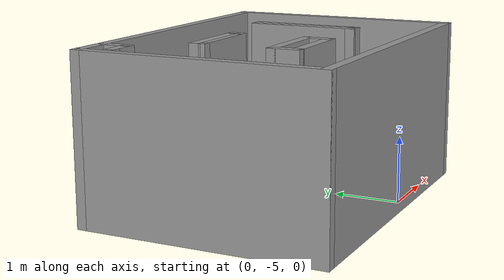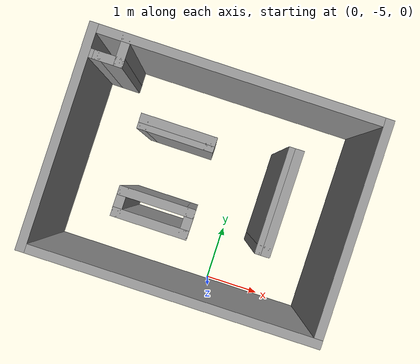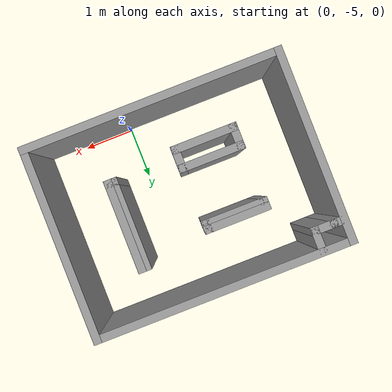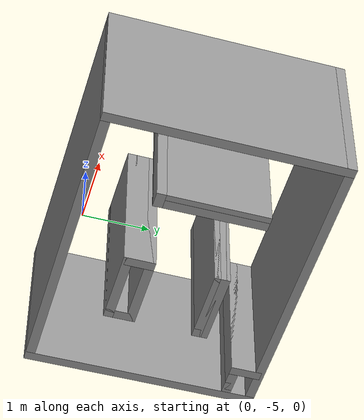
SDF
<?xml version='1.0'?>
<sdf version='1.6'>
  <model name='test_world_v4'>
    <pose frame=''>-0.605 -3.31 0 0 -0 0</pose>
    <link name='Wall_21'>
      <collision name='Wall_21_Collision'>
        <geometry>
          <box>
            <size>3.75 0.15 2.5</size>
          </box>
        </geometry>
        <pose frame=''>0 0 1.25 0 -0 0</pose>
      </collision>
      <visual name='Wall_21_Visual'>
        <pose frame=''>0 0 1.25 0 -0 0</pose>
        <geometry>
          <box>
            <size>3.75 0.15 2.5</size>
          </box>
        </geometry>
        <material>
          <script>
            <uri>file://media/materials/scripts/gazebo.material</uri>
            <name>Gazebo/Grey</name>
          </script>
          <ambient>1 1 1 1</ambient>
        </material>
      </visual>
      <pose frame=''>-2.425 0 0 0 0 -1.5708</pose>
    </link>
    <link name='Wall_22'>
      <collision name='Wall_22_Collision'>
        <geometry>
          <box>
            <size>5 0.15 2.5</size>
          </box>
        </geometry>
        <pose frame=''>0 0 1.25 0 -0 0</pose>
      </collision>
      <visual name='Wall_22_Visual'>
        <pose frame=''>0 0 1.25 0 -0 0</pose>
        <geometry>
          <box>
            <size>5 0.15 2.5</size>
          </box>
        </geometry>
        <material>
          <script>
            <uri>file://media/materials/scripts/gazebo.material</uri>
            <name>Gazebo/Grey</name>
          </script>
          <ambient>1 1 1 1</ambient>
        </material>
      </visual>
      <pose frame=''>0 -1.8 0 0 -0 0</pose>
    </link>
    <link name='Wall_23'>
      <collision name='Wall_23_Collision'>
        <geometry>
          <box>
            <size>3.75 0.15 2.5</size>
          </box>
        </geometry>
        <pose frame=''>0 0 1.25 0 -0 0</pose>
      </collision>
      <visual name='Wall_23_Visual'>
        <pose frame=''>0 0 1.25 0 -0 0</pose>
        <geometry>
          <box>
            <size>3.75 0.15 2.5</size>
          </box>
        </geometry>
        <material>
          <script>
            <uri>file://media/materials/scripts/gazebo.material</uri>
            <name>Gazebo/Grey</name>
          </script>
          <ambient>1 1 1 1</ambient>
        </material>
      </visual>
      <pose frame=''>2.425 0 0 0 -0 1.5708</pose>
    </link>
    <link name='Wall_24'>
      <collision name='Wall_24_Collision'>
        <geometry>
          <box>
            <size>5 0.15 2.5</size>
          </box>
        </geometry>
        <pose frame=''>0 0 1.25 0 -0 0</pose>
      </collision>
      <visual name='Wall_24_Visual'>
        <pose frame=''>0 0 1.25 0 -0 0</pose>
        <geometry>
          <box>
            <size>5 0.15 2.5</size>
          </box>
        </geometry>
        <material>
          <script>
            <uri>file://media/materials/scripts/gazebo.material</uri>
            <name>Gazebo/Grey</name>
          </script>
          <ambient>1 1 1 1</ambient>
        </material>
      </visual>
      <pose frame=''>0 1.8 0 0 -0 3.14159</pose>
    </link>
    <link name='Wall_26'>
      <collision name='Wall_26_Collision'>
        <geometry>
          <box>
            <size>0.5 0.15 2.5</size>
          </box>
        </geometry>
        <pose frame=''>0 0 1.25 0 -0 0</pose>
      </collision>
      <visual name='Wall_26_Visual'>
        <pose frame=''>0 0 1.25 0 -0 0</pose>
        <geometry>
          <box>
            <size>0.5 0.15 2.5</size>
          </box>
        </geometry>
        <material>
          <script>
            <uri>file://media/materials/scripts/gazebo.material</uri>
            <name>Gazebo/Grey</name>
          </script>
          <ambient>1 1 1 1</ambient>
        </material>
      </visual>
      <pose frame=''>-1.865 1.575 0 0 0 -1.5708</pose>
    </link>
    <link name='Wall_27'>
      <collision name='Wall_27_Collision'>
        <geometry>
          <box>
            <size>0.5 0.15 2.5</size>
          </box>
        </geometry>
        <pose frame=''>0 0 1.25 0 -0 0</pose>
      </collision>
      <visual name='Wall_27_Visual'>
        <pose frame=''>0 0 1.25 0 -0 0</pose>
        <geometry>
          <box>
            <size>0.5 0.15 2.5</size>
          </box>
        </geometry>
        <material>
          <script>
            <uri>file://media/materials/scripts/gazebo.material</uri>
            <name>Gazebo/Grey</name>
          </script>
          <ambient>1 1 1 1</ambient>
        </material>
      </visual>
      <pose frame=''>-2.04 1.4 0 0 -0 3.14159</pose>
    </link>
    <link name='Wall_28'>
      <collision name='Wall_28_Collision'>
        <geometry>
          <box>
            <size>0.25 0.15 2.5</size>
          </box>
        </geometry>
        <pose frame=''>0 0 1.25 0 -0 0</pose>
      </collision>
      <visual name='Wall_28_Visual'>
        <pose frame=''>0 0 1.25 0 -0 0</pose>
        <geometry>
          <box>
            <size>0.25 0.15 2.5</size>
          </box>
        </geometry>
        <material>
          <script>
            <uri>file://media/materials/scripts/gazebo.material</uri>
            <name>Gazebo/Grey</name>
          </script>
          <ambient>1 1 1 1</ambient>
        </material>
      </visual>
      <pose frame=''>-2.265 1.4 0 0 -0 3.14159</pose>
    </link>
    <link name='Wall_30'>
      <collision name='Wall_30_Collision'>
        <geometry>
          <box>
            <size>1.25 0.15 2.5</size>
          </box>
        </geometry>
        <pose frame=''>0 0 1.25 0 -0 0</pose>
      </collision>
      <visual name='Wall_30_Visual'>
        <pose frame=''>0 0 1.25 0 -0 0</pose>
        <geometry>
          <box>
            <size>1.25 0.15 2.5</size>
          </box>
        </geometry>
        <material>
          <script>
            <uri>file://media/materials/scripts/gazebo.material</uri>
            <name>Gazebo/Grey</name>
          </script>
          <ambient>1 1 1 1</ambient>
        </material>
      </visual>
      <pose frame=''>-0.665 0.69 0 0 -0 0</pose>
    </link>
    <link name='Wall_33'>
      <collision name='Wall_33_Collision'>
        <geometry>
          <box>
            <size>0.25 0.15 2.5</size>
          </box>
        </geometry>
        <pose frame=''>0 0 1.25 0 -0 0</pose>
      </collision>
      <visual name='Wall_33_Visual'>
        <pose frame=''>0 0 1.25 0 -0 0</pose>
        <geometry>
          <box>
            <size>0.25 0.15 2.5</size>
          </box>
        </geometry>
        <material>
          <script>
            <uri>file://media/materials/scripts/gazebo.material</uri>
            <name>Gazebo/Grey</name>
          </script>
          <ambient>1 1 1 1</ambient>
        </material>
      </visual>
      <pose frame=''>-0.115 0.64 0 0 0 -1.5708</pose>
    </link>
    <link name='Wall_34'>
      <collision name='Wall_34_Collision'>
        <geometry>
          <box>
            <size>1.25 0.15 2.5</size>
          </box>
        </geometry>
        <pose frame=''>0 0 1.25 0 -0 0</pose>
      </collision>
      <visual name='Wall_34_Visual'>
        <pose frame=''>0 0 1.25 0 -0 0</pose>
        <geometry>
          <box>
            <size>1.25 0.15 2.5</size>
          </box>
        </geometry>
        <material>
          <script>
            <uri>file://media/materials/scripts/gazebo.material</uri>
            <name>Gazebo/Grey</name>
          </script>
          <ambient>1 1 1 1</ambient>
        </material>
      </visual>
      <pose frame=''>-0.665 0.59 0 0 -0 3.14159</pose>
    </link>
    <link name='Wall_35'>
      <collision name='Wall_35_Collision'>
        <geometry>
          <box>
            <size>0.15 0.15 2.5</size>
          </box>
        </geometry>
        <pose frame=''>0 0 1.25 0 -0 0</pose>
      </collision>
      <visual name='Wall_35_Visual'>
        <pose frame=''>0 0 1.25 0 -0 0</pose>
        <geometry>
          <box>
            <size>0.15 0.15 2.5</size>
          </box>
        </geometry>
        <material>
          <script>
            <uri>file://media/materials/scripts/gazebo.material</uri>
            <name>Gazebo/Grey</name>
          </script>
          <ambient>1 1 1 1</ambient>
        </material>
      </visual>
      <pose frame=''>-1.215 0.59 0 0 -0 0</pose>
    </link>
    <link name='Wall_37'>
      <collision name='Wall_37_Collision'>
        <geometry>
          <box>
            <size>0.5 0.15 2.5</size>
          </box>
        </geometry>
        <pose frame=''>0 0 1.25 0 -0 0</pose>
      </collision>
      <visual name='Wall_37_Visual'>
        <pose frame=''>0 0 1.25 0 -0 0</pose>
        <geometry>
          <box>
            <size>0.5 0.15 2.5</size>
          </box>
        </geometry>
        <material>
          <script>
            <uri>file://media/materials/scripts/gazebo.material</uri>
            <name>Gazebo/Grey</name>
          </script>
          <ambient>1 1 1 1</ambient>
        </material>
      </visual>
      <pose frame=''>-1.185 -0.655 0 0 0 -1.5708</pose>
    </link>
    <link name='Wall_38'>
      <collision name='Wall_38_Collision'>
        <geometry>
          <box>
            <size>1.25 0.15 2.5</size>
          </box>
        </geometry>
        <pose frame=''>0 0 1.25 0 -0 0</pose>
      </collision>
      <visual name='Wall_38_Visual'>
        <pose frame=''>0 0 1.25 0 -0 0</pose>
        <geometry>
          <box>
            <size>1.25 0.15 2.5</size>
          </box>
        </geometry>
        <material>
          <script>
            <uri>file://media/materials/scripts/gazebo.material</uri>
            <name>Gazebo/Grey</name>
          </script>
          <ambient>1 1 1 1</ambient>
        </material>
      </visual>
      <pose frame=''>-0.635 -0.83 0 0 -0 0</pose>
    </link>
    <link name='Wall_39'>
      <collision name='Wall_39_Collision'>
        <geometry>
          <box>
            <size>0.5 0.15 2.5</size>
          </box>
        </geometry>
        <pose frame=''>0 0 1.25 0 -0 0</pose>
      </collision>
      <visual name='Wall_39_Visual'>
        <pose frame=''>0 0 1.25 0 -0 0</pose>
        <geometry>
          <box>
            <size>0.5 0.15 2.5</size>
          </box>
        </geometry>
        <material>
          <script>
            <uri>file://media/materials/scripts/gazebo.material</uri>
            <name>Gazebo/Grey</name>
          </script>
          <ambient>1 1 1 1</ambient>
        </material>
      </visual>
      <pose frame=''>-0.085 -0.655 0 0 -0 1.5708</pose>
    </link>
    <link name='Wall_40'>
      <collision name='Wall_40_Collision'>
        <geometry>
          <box>
            <size>1.25 0.15 2.5</size>
          </box>
        </geometry>
        <pose frame=''>0 0 1.25 0 -0 0</pose>
      </collision>
      <visual name='Wall_40_Visual'>
        <pose frame=''>0 0 1.25 0 -0 0</pose>
        <geometry>
          <box>
            <size>1.25 0.15 2.5</size>
          </box>
        </geometry>
        <material>
          <script>
            <uri>file://media/materials/scripts/gazebo.material</uri>
            <name>Gazebo/Grey</name>
          </script>
          <ambient>1 1 1 1</ambient>
        </material>
      </visual>
      <pose frame=''>-0.635 -0.48 0 0 -0 3.14159</pose>
    </link>
    <link name='Wall_42'>
      <collision name='Wall_42_Collision'>
        <geometry>
          <box>
            <size>1.75 0.15 2.5</size>
          </box>
        </geometry>
        <pose frame=''>0 0 1.25 0 -0 0</pose>
      </collision>
      <visual name='Wall_42_Visual'>
        <pose frame=''>0 0 1.25 0 -0 0</pose>
        <geometry>
          <box>
            <size>1.75 0.15 2.5</size>
          </box>
        </geometry>
        <material>
          <script>
            <uri>file://media/materials/scripts/gazebo.material</uri>
            <name>Gazebo/Grey</name>
          </script>
          <ambient>1 1 1 1</ambient>
        </material>
      </visual>
      <pose frame=''>1.235 0.11 0 0 0 -1.5708</pose>
    </link>
    <link name='Wall_43'>
      <collision name='Wall_43_Collision'>
        <geometry>
          <box>
            <size>0.25 0.15 2.5</size>
          </box>
        </geometry>
        <pose frame=''>0 0 1.25 0 -0 0</pose>
      </collision>
      <visual name='Wall_43_Visual'>
        <pose frame=''>0 0 1.25 0 -0 0</pose>
        <geometry>
          <box>
            <size>0.25 0.15 2.5</size>
          </box>
        </geometry>
        <material>
          <script>
            <uri>file://media/materials/scripts/gazebo.material</uri>
            <name>Gazebo/Grey</name>
          </script>
          <ambient>1 1 1 1</ambient>
        </material>
      </visual>
      <pose frame=''>1.185 -0.69 0 0 -0 3.14159</pose>
    </link>
    <link name='Wall_44'>
      <collision name='Wall_44_Collision'>
        <geometry>
          <box>
            <size>1.75 0.15 2.5</size>
          </box>
        </geometry>
        <pose frame=''>0 0 1.25 0 -0 0</pose>
      </collision>
      <visual name='Wall_44_Visual'>
        <pose frame=''>0 0 1.25 0 -0 0</pose>
        <geometry>
          <box>
            <size>1.75 0.15 2.5</size>
          </box>
        </geometry>
        <material>
          <script>
            <uri>file://media/materials/scripts/gazebo.material</uri>
            <name>Gazebo/Grey</name>
          </script>
          <ambient>1 1 1 1</ambient>
        </material>
      </visual>
      <pose frame=''>1.135 0.11 0 0 -0 1.5708</pose>
    </link>
    <static>1</static>
  </model>
</sdf>
